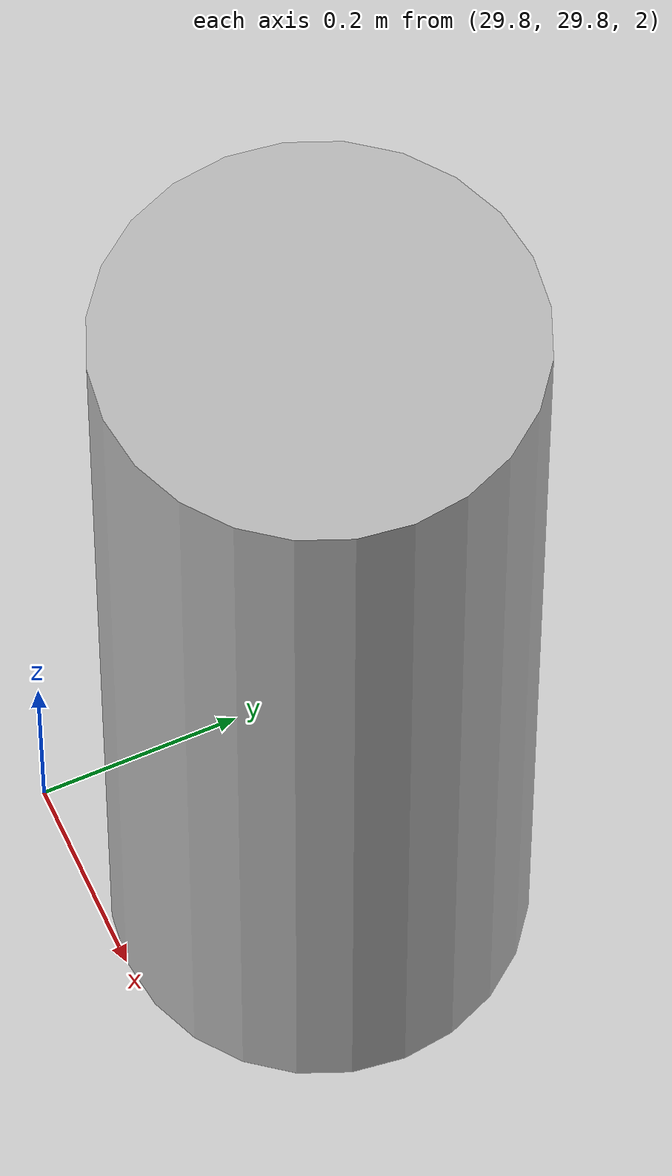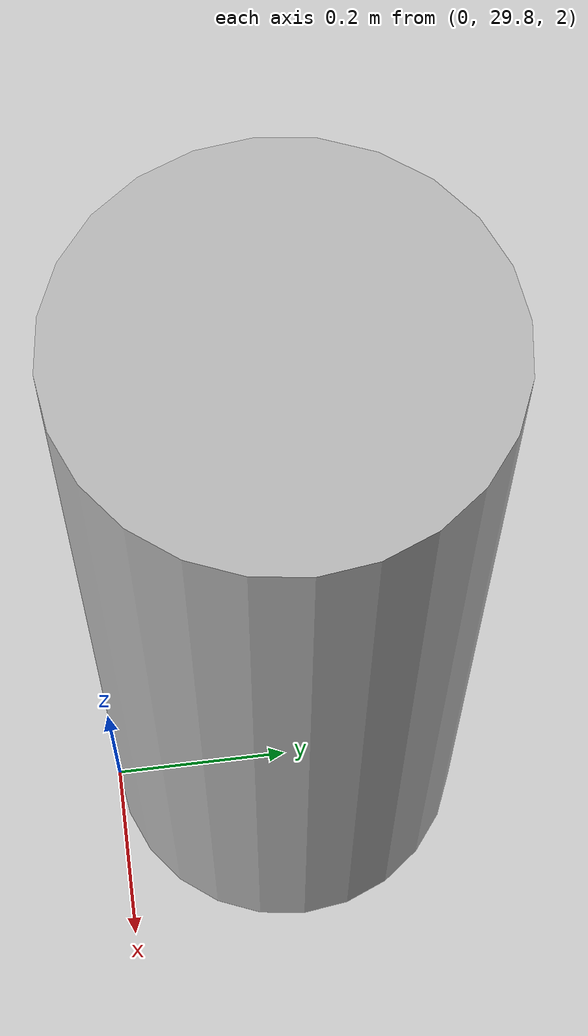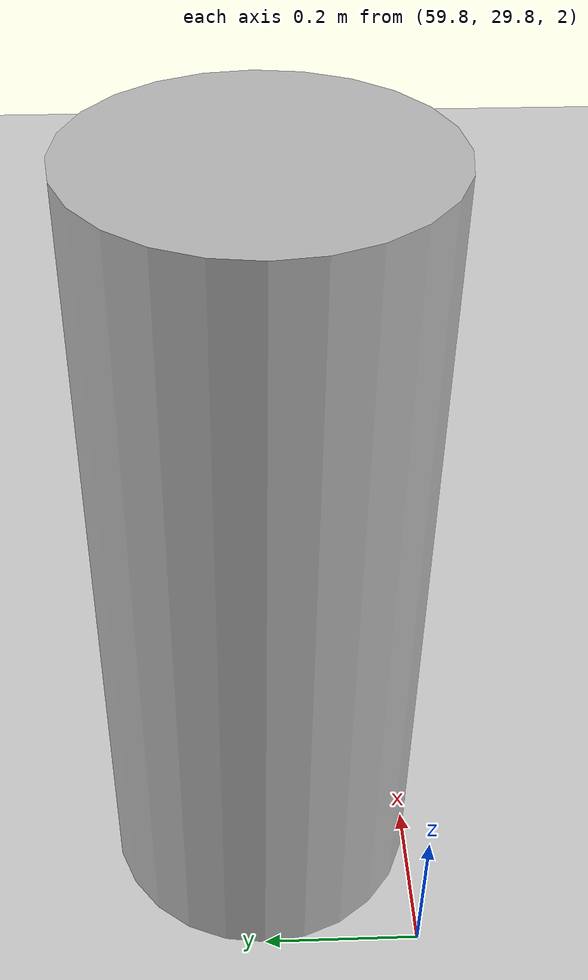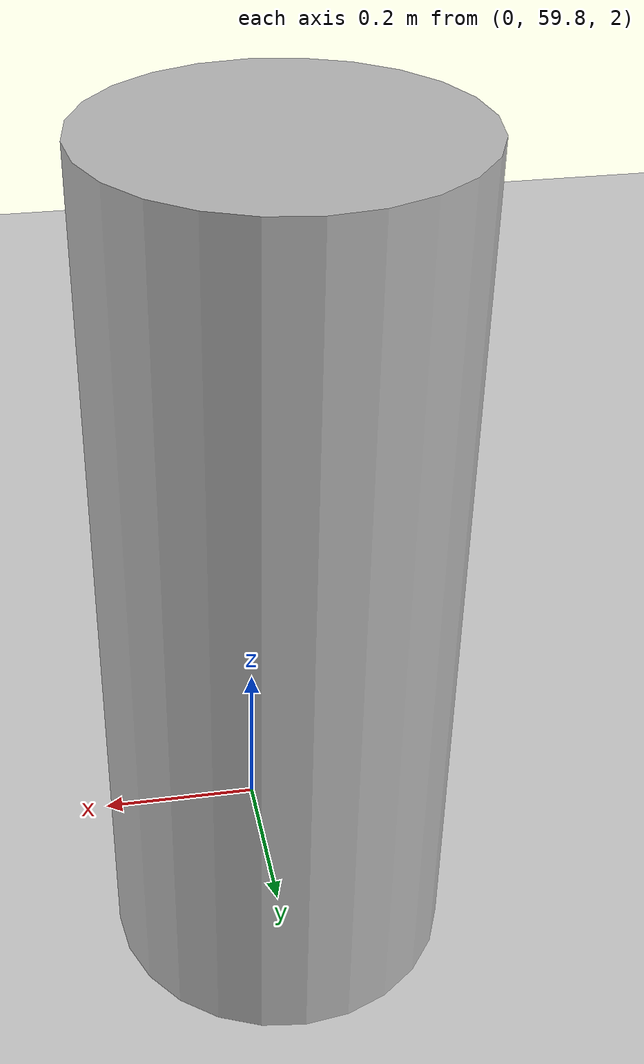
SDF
<sdf version="1.5">
 <world name="Scenario 4">
  <include><uri>model://ground_plane</uri></include>
  <include><uri>model://sun</uri></include>
  <include><uri>model://reflector_1</uri><name>reflector</name><pose>60 30 0 0 0 0</pose></include>
  <include><uri>model://reflector_1</uri><name>reflector</name><pose>45 0 0 0 0 0</pose></include>
  <include><uri>model://reflector_1</uri><name>reflector</name><pose>30 30 0 0 0 0</pose></include>
  <include><uri>model://reflector_1</uri><name>reflector</name><pose>15 0 0 0 0 0</pose></include>
  <include><uri>model://reflector_1</uri><name>reflector</name><pose>0 30 0 0 0 0</pose></include>
  <include><uri>model://reflector_1</uri><name>reflector</name><pose>30 60 0 0 0 0</pose></include>
  <include><uri>model://reflector_1</uri><name>reflector</name><pose>0 60 0 0 0 0</pose></include>
 </world>
</sdf>

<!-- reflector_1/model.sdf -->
<sdf version="1.6">
  <model name="reflector_1">
    <static>true</static>
    <link name="link">
      <pose>0 0 2.5 0 0 0</pose>
      <collision name="collision">
        <laser_retro>200</laser_retro>
        <geometry>
          <cylinder>
            <radius>0.2</radius>
            <length>1</length>
          </cylinder>
        </geometry>
      </collision>

      <visual name="visual">
        <geometry>
          <cylinder>
            <radius>0.2</radius>
            <length>1</length>
          </cylinder>
        </geometry>
      </visual>
    </link>
  </model>
</sdf>
